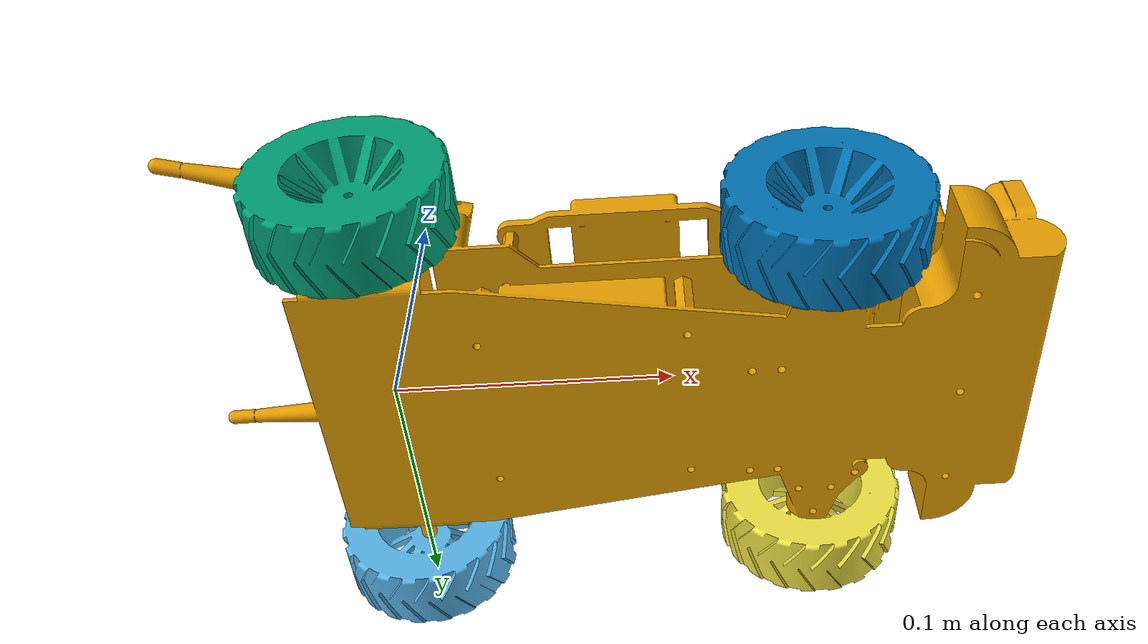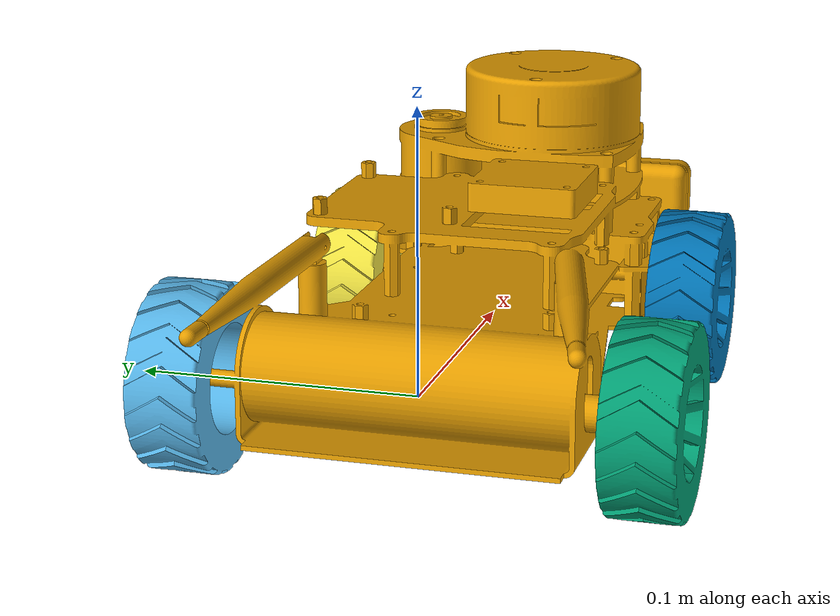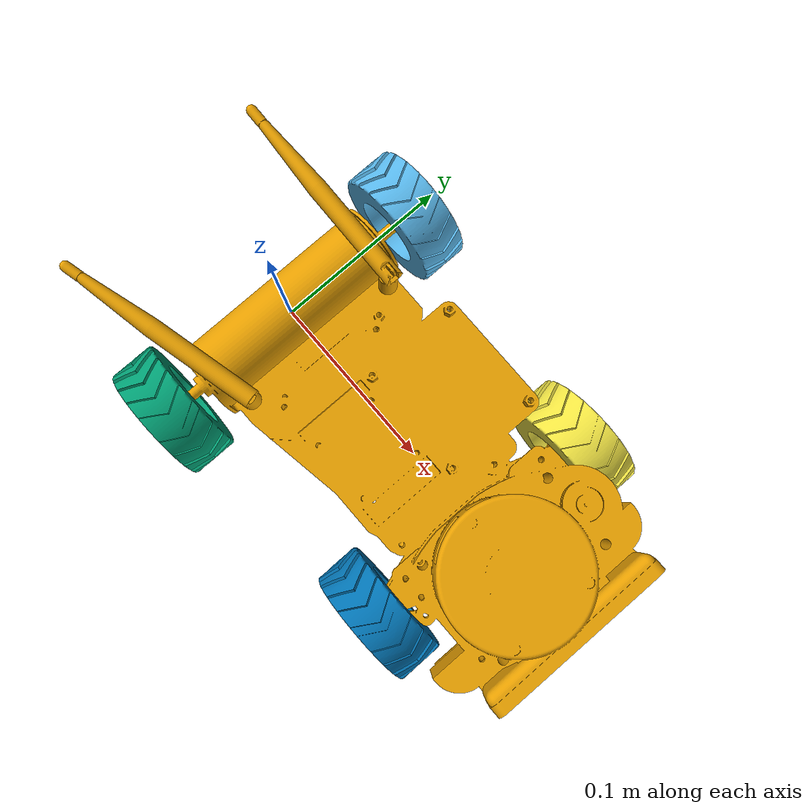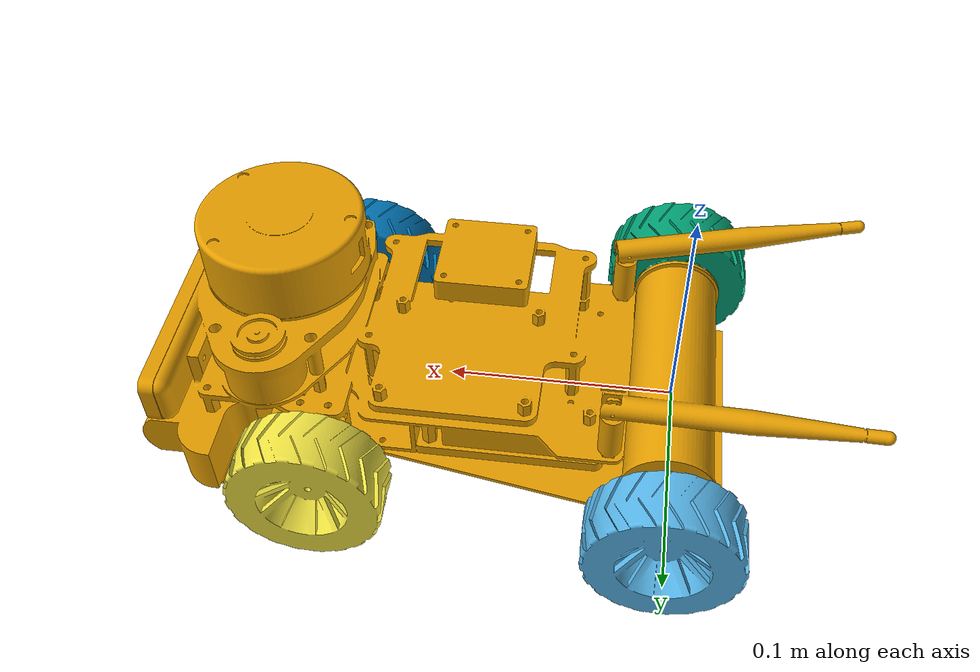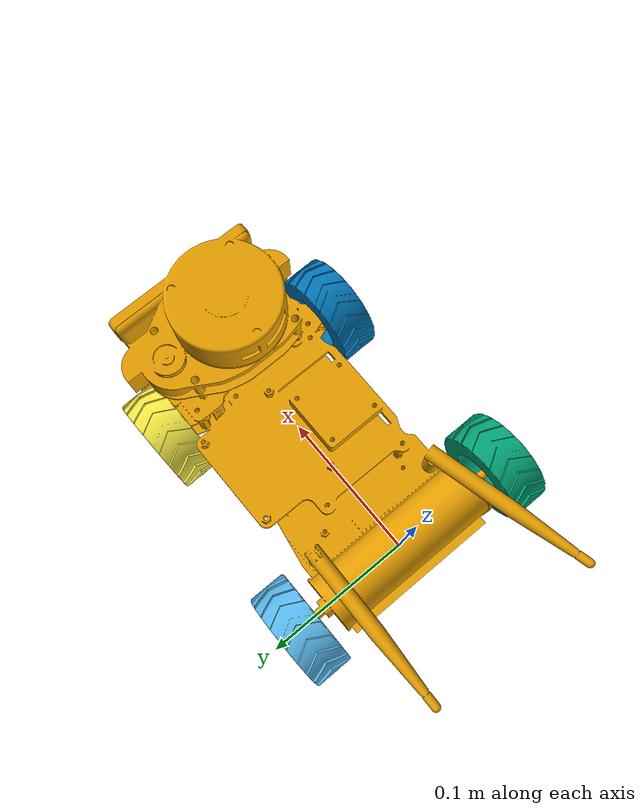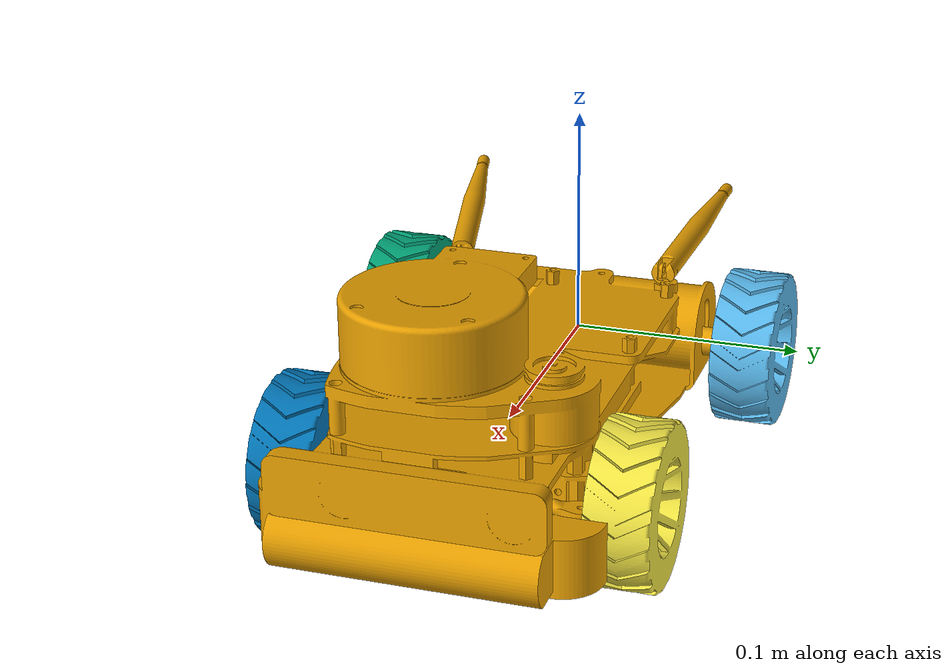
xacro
<?xml version="1.0"?>
<robot xmlns:xacro="http://www.ros.org/wiki/xacro" name="jetracer">

  <!-- PODWOZIE JETRACERA                      -->

  <link name="base_link">
    <visual>
      <origin
        xyz="0.084440 -0.044779 0.041111"
        rpy="1.570796 0 3.141593"/>

      <geometry>
        <mesh
          filename="package://jetracer_description/meshes/chassis.stl"
          scale="0.001 0.001 0.001"/>
      </geometry>
    </visual>
  </link>

  <!-- TYLNE LEWE KOLO                         -->

  <link name="rear_left_wheel">
    <visual>
      <origin
        xyz="0.084440 -0.125529 0.041111"
        rpy="1.570796 0 3.141593"/>

      <geometry>
        <mesh
          filename="package://jetracer_description/meshes/rear_left_wheel.stl"
          scale="0.001 0.001 0.001"/>
      </geometry>
    </visual>
  </link>

  <joint name="rear_left_wheel_joint" type="fixed">
    <parent link="base_link"/>
    <child link="rear_left_wheel"/>
    <origin xyz="0 0.080750 0" rpy="0 0 0"/>
  </joint>

  <!-- TYLNE PRAWE KOLO                        -->

  <link name="rear_right_wheel">
    <visual>
      <origin
        xyz="0.084440 0.035971 0.041111"
        rpy="1.570796 0 3.141593"/>

      <geometry>
        <mesh
          filename="package://jetracer_description/meshes/rear_right_wheel.stl"
          scale="0.001 0.001 0.001"/>
      </geometry>
    </visual>
  </link>

  <joint name="rear_right_wheel_joint" type="fixed">
    <parent link="base_link"/>
    <child link="rear_right_wheel"/>
    <origin xyz="0 -0.080750 0" rpy="0 0 0"/>
  </joint>

  <!-- PRZEDNIE LEWE KOLO                      -->

  <link name="front_left_wheel">
    <visual>
      <origin
        xyz="-0.062929 -0.1122745 0.041111"
        rpy="1.570796 0 3.141593"/>

      <geometry>
        <mesh
          filename="package://jetracer_description/meshes/front_left_wheel.stl"
          scale="0.001 0.001 0.001"/>
      </geometry>
    </visual>
  </link>

  <joint name="front_left_wheel_joint" type="fixed">
    <parent link="base_link"/>
    <child link="front_left_wheel"/>
    <origin xyz="0.147369 0.0674955 0" rpy="0 0 0"/>
  </joint>

  <!-- PRZEDNIE PRAWE KOLO                     -->

  <link name="front_right_wheel">
    <visual>
      <origin
        xyz="-0.062929 0.0227165 0.041111"
        rpy="1.570796 0 3.141593"/>

      <geometry>
        <mesh
          filename="package://jetracer_description/meshes/front_right_wheel.stl"
          scale="0.001 0.001 0.001"/>
      </geometry>
    </visual>
  </link>

  <joint name="front_right_wheel_joint" type="fixed">
    <parent link="base_link"/>
    <child link="front_right_wheel"/>
    <origin xyz="0.147369 -0.0674955 0" rpy="0 0 0"/>
  </joint>
  <!-- RPLIDAR A1M8-R5                         -->

  <link name="laser"/>

  <joint name="laser_joint" type="fixed">
    <parent link="base_link"/>
    <child link="laser"/>
    <origin
      xyz="0.170 -0.006 0.0736"
      rpy="0 0 1.570796"/>
  </joint>

  <!-- INTEL REALSENSE T265                    -->

  <link name="t265_tracking_center"/>

  <joint name="t265_joint" type="fixed">
    <parent link="base_link"/>
    <child link="t265_tracking_center"/>
    <origin
      xyz="0.21595 0.00910 0.02225"
      rpy="1.570796 0 -1.570796"/>
  </joint>
</robot>
